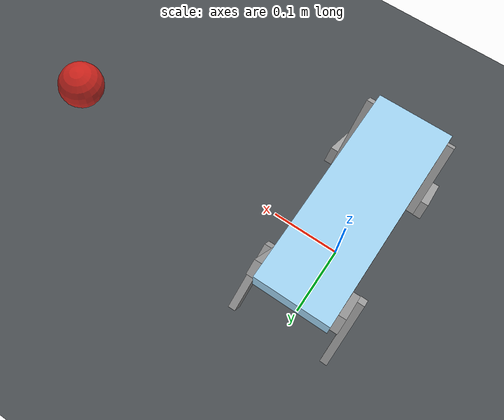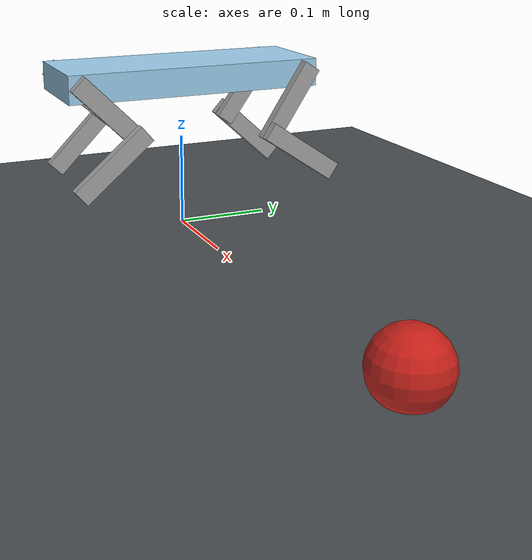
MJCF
<?xml version='1.0' encoding='utf-8'?>
<mujoco model="simple_quad_v0">
  <compiler angle="radian" coordinate="local" autolimits="false" />
  <option timestep="0.002" integrator="RK4" gravity="0 0 -9.81" />
  <size njmax="100" nconmax="100" />
  <asset>
    <material name="floor" rgba="0.28 0.30 0.31 1" />
  </asset>
  <worldbody>
    <light name="key" pos="0 -1.5 2.5" dir="0 1 -1" />
    <geom name="floor" type="plane" size="2 2 0.02" material="floor" friction="0.9 0.02 0.001" />
    <camera name="track" mode="trackcom" pos="0.65 -0.9 0.45" xyaxes="0.82 0.57 0 -0.20 0.29 0.94" />
    <body name="target_marker" mocap="true" pos="0.45 0 0.025">
      <geom name="target_marker_geom" type="sphere" size="0.035" rgba="1 0.12 0.08 0.75" contype="0" conaffinity="0" />
    </body>
    <body name="body" pos="0 0 0.17">
      <freejoint name="root_free" />
      <inertial pos="0 7.48275e-18 1.26887e-17" euler="0 -0 0" mass="0.410343" diaginertia="0.00259371 0.000372065 0.00290555" />
      <geom type="box" pos="0 0 0" euler="0 -0 0" size="0.0500000007 0.139978006 0.0149999997" rgba="0.615686 0.811765 0.929412 1" name="body_visual" contype="0" conaffinity="0" group="2" mass="0" />
      <geom type="box" pos="0 0 0" euler="0 -0 0" size="0.0500000007 0.139978006 0.0149999997" rgba="0.35 0.35 0.35 0.18" name="body_collision" group="3" friction="0.9 0.02 0.001" mass="0" />
      <body name="leg_5" pos="-0.05 0.125 2.77556e-17" euler="1.5708 -0 0">
        <joint name="revolute_back_left_hip" type="hinge" axis="1 0 0" range="-0.9 0.9" limited="true" damping="0.8" armature="0.002" frictionloss="0.01" />
        <inertial pos="-0.005 -0.0304821 0.0218425" euler="-2.19256 -0 0" mass="0.0544248" diaginertia="3.93186e-05 1.4351e-05 2.58747e-05" />
        <geom type="box" pos="-0.0050000003 -0.0304815537 0.0218421691" euler="-2.19256 -0 0" size="0.00499999896 0.0100000016 0.0474853325" rgba="0.647059 0.647059 0.647059 1" name="leg_5_visual" contype="0" conaffinity="0" group="2" mass="0" />
        <geom type="box" pos="-0.0050000003 -0.0304815537 0.0218421691" euler="-2.19256 -0 0" size="0.00499999896 0.0100000016 0.0474853325" rgba="0.35 0.35 0.35 0.18" name="leg_5_collision" group="3" friction="0.9 0.02 0.001" mass="0" />
        <body name="leg_6" pos="-0.01 -0.0609641 0.043685" euler="-0.735344 0 0">
          <joint name="revolute_back_left_knee" type="hinge" axis="1 -0 -0" range="-1.25 1.25" limited="true" damping="0.8" armature="0.002" frictionloss="0.01" />
          <inertial pos="-0.005 0 -0.0375" euler="0 -0 0" mass="0.0544248" diaginertia="3.93186e-05 3.80365e-05 2.18916e-06" />
          <geom type="box" pos="-0.0050000003 -3.7252903e-09 -0.0374999982" euler="0 -0 0" size="0.00499999896 0.0100000016 0.0474853325" rgba="0.647059 0.647059 0.647059 1" name="leg_6_visual" contype="0" conaffinity="0" group="2" mass="0" />
          <geom type="box" pos="-0.0050000003 -3.7252903e-09 -0.0374999982" euler="0 -0 0" size="0.00499999896 0.0100000016 0.0474853325" rgba="0.35 0.35 0.35 0.18" name="leg_6_collision" group="3" friction="0.9 0.02 0.001" mass="0" />
        </body>
      </body>
      <body name="leg_1" pos="0.05 0.125 2.77556e-17" euler="1.5708 -0 0">
        <joint name="revolute_back_right_hip" type="hinge" axis="-1 0 0" range="-0.9 0.9" limited="true" damping="0.8" armature="0.002" frictionloss="0.01" />
        <inertial pos="0.005 -0.0315225 0.0203121" euler="-2.1432 -0 0" mass="0.0544248" diaginertia="3.93186e-05 1.27065e-05 2.75192e-05" />
        <geom type="box" pos="0.0049999997 -0.0315228829 0.0203122132" euler="-2.1432 -0 0" size="0.00499999896 0.0100000016 0.0474853325" rgba="0.647059 0.647059 0.647059 1" name="leg_1_visual" contype="0" conaffinity="0" group="2" mass="0" />
        <geom type="box" pos="0.0049999997 -0.0315228829 0.0203122132" euler="-2.1432 -0 0" size="0.00499999896 0.0100000016 0.0474853325" rgba="0.35 0.35 0.35 0.18" name="leg_1_collision" group="3" friction="0.9 0.02 0.001" mass="0" />
        <body name="leg_3" pos="0.01 -0.063045 0.0406243" euler="-2.1432 -0 0">
          <joint name="revolute_back_right_knee" type="hinge" axis="-1 0 0" range="-1.25 1.25" limited="true" damping="0.8" armature="0.002" frictionloss="0.01" />
          <inertial pos="0.005 0.0374943 -0.000652877" euler="1.55339 -0 0" mass="0.0544248" diaginertia="3.93186e-05 2.20002e-06 3.80256e-05" />
          <geom type="box" pos="0.0049999997 0.0374948964 -0.000652772203" euler="1.55339 -0 0" size="0.00499999896 0.0100000016 0.0474853325" rgba="0.647059 0.647059 0.647059 1" name="leg_3_visual" contype="0" conaffinity="0" group="2" mass="0" />
          <geom type="box" pos="0.0049999997 0.0374948964 -0.000652772203" euler="1.55339 -0 0" size="0.00499999896 0.0100000016 0.0474853325" rgba="0.35 0.35 0.35 0.18" name="leg_3_collision" group="3" friction="0.9 0.02 0.001" mass="0" />
        </body>
      </body>
      <body name="leg_2" pos="-0.05 -0.125 1.38778e-17" euler="1.5708 -0 0">
        <joint name="revolute_front_left_hip" type="hinge" axis="1 0 0" range="-0.9 0.9" limited="true" damping="0.8" armature="0.002" frictionloss="0.01" />
        <inertial pos="-0.005 -0.0248154 -0.0281149" euler="-0.723141 0 0" mass="0.0544248" diaginertia="3.93186e-05 2.23388e-05 1.78869e-05" />
        <geom type="box" pos="-0.0050000003 -0.0248154201 -0.0281149502" euler="-0.723141 0 0" size="0.00499999896 0.0100000016 0.0474853325" rgba="0.647059 0.647059 0.647059 1" name="leg_2_visual" contype="0" conaffinity="0" group="2" mass="0" />
        <geom type="box" pos="-0.0050000003 -0.0248154201 -0.0281149502" euler="-0.723141 0 0" size="0.00499999896 0.0100000016 0.0474853325" rgba="0.35 0.35 0.35 0.18" name="leg_2_collision" group="3" friction="0.9 0.02 0.001" mass="0" />
        <body name="leg_4" pos="-0.01 -0.0496307 -0.0562298" euler="-0.723141 0 0">
          <joint name="revolute_front_left_knee" type="hinge" axis="1 0 0" range="-1.25 1.25" limited="true" damping="0.8" armature="0.002" frictionloss="0.01" />
          <inertial pos="-0.005 -0.0374406 0.00210991" euler="-1.62709 0 0" mass="0.0544248" diaginertia="3.93186e-05 2.30264e-06 3.7923e-05" />
          <geom type="box" pos="-0.0050000003 -0.0374406422 0.00210989278" euler="-1.62709 0 0" size="0.00499999896 0.0100000016 0.0474853325" rgba="0.647059 0.647059 0.647059 1" name="leg_4_visual" contype="0" conaffinity="0" group="2" mass="0" />
          <geom type="box" pos="-0.0050000003 -0.0374406422 0.00210989278" euler="-1.62709 0 0" size="0.00499999896 0.0100000016 0.0474853325" rgba="0.35 0.35 0.35 0.18" name="leg_4_collision" group="3" friction="0.9 0.02 0.001" mass="0" />
        </body>
      </body>
      <body name="leg" pos="0.05 -0.125 -1.38778e-17" euler="6.66134e-16 -0 0">
        <joint name="revolute_front_right_hip" type="hinge" axis="-1 0 0" range="-0.9 0.9" limited="true" damping="0.8" armature="0.002" frictionloss="0.01" />
        <inertial pos="0.005 0.0265888 -0.026444" euler="0.788128 -0 0" mass="0.0544248" diaginertia="3.93186e-05 2.0015e-05 2.02107e-05" />
        <geom type="box" pos="0.0049999997 0.0265887544 -0.026444025" euler="0.788128 -0 0" size="0.00499999896 0.0100000016 0.0474853325" rgba="0.647059 0.647059 0.647059 1" name="leg_visual" contype="0" conaffinity="0" group="2" mass="0" />
        <geom type="box" pos="0.0049999997 0.0265887544 -0.026444025" euler="0.788128 -0 0" size="0.00499999896 0.0100000016 0.0474853325" rgba="0.35 0.35 0.35 0.18" name="leg_collision" group="3" friction="0.9 0.02 0.001" mass="0" />
        <body name="leg_7" pos="0.01 0.0531776 -0.052888" euler="0.788128 -0 0">
          <joint name="revolute_front_right_knee" type="hinge" axis="-1 0 0" range="-1.25 1.25" limited="true" damping="0.8" armature="0.002" frictionloss="0.01" />
          <inertial pos="0.005 -0.0373662 0.00316528" euler="-1.6553 0 0" mass="0.0544248" diaginertia="3.93186e-05 2.44456e-06 3.77811e-05" />
          <geom type="box" pos="0.0049999997 -0.0373666941 0.00316508231" euler="-1.6553 0 0" size="0.00499999896 0.0100000016 0.0474853325" rgba="0.647059 0.647059 0.647059 1" name="leg_7_visual" contype="0" conaffinity="0" group="2" mass="0" />
          <geom type="box" pos="0.0049999997 -0.0373666941 0.00316508231" euler="-1.6553 0 0" size="0.00499999896 0.0100000016 0.0474853325" rgba="0.35 0.35 0.35 0.18" name="leg_7_collision" group="3" friction="0.9 0.02 0.001" mass="0" />
        </body>
      </body>
    </body>
  </worldbody>
  <actuator>
    <position name="revolute_back_left_hip_servo" joint="revolute_back_left_hip" kp="22" ctrllimited="true" ctrlrange="-0.9 0.9" forcelimited="true" forcerange="-1.37 1.37" />
    <position name="revolute_back_left_knee_servo" joint="revolute_back_left_knee" kp="22" ctrllimited="true" ctrlrange="-1.25 1.25" forcelimited="true" forcerange="-1.37 1.37" />
    <position name="revolute_back_right_hip_servo" joint="revolute_back_right_hip" kp="22" ctrllimited="true" ctrlrange="-0.9 0.9" forcelimited="true" forcerange="-1.37 1.37" />
    <position name="revolute_back_right_knee_servo" joint="revolute_back_right_knee" kp="22" ctrllimited="true" ctrlrange="-1.25 1.25" forcelimited="true" forcerange="-1.37 1.37" />
    <position name="revolute_front_left_hip_servo" joint="revolute_front_left_hip" kp="22" ctrllimited="true" ctrlrange="-0.9 0.9" forcelimited="true" forcerange="-1.37 1.37" />
    <position name="revolute_front_left_knee_servo" joint="revolute_front_left_knee" kp="22" ctrllimited="true" ctrlrange="-1.25 1.25" forcelimited="true" forcerange="-1.37 1.37" />
    <position name="revolute_front_right_hip_servo" joint="revolute_front_right_hip" kp="22" ctrllimited="true" ctrlrange="-0.9 0.9" forcelimited="true" forcerange="-1.37 1.37" />
    <position name="revolute_front_right_knee_servo" joint="revolute_front_right_knee" kp="22" ctrllimited="true" ctrlrange="-1.25 1.25" forcelimited="true" forcerange="-1.37 1.37" />
  </actuator>
</mujoco>
